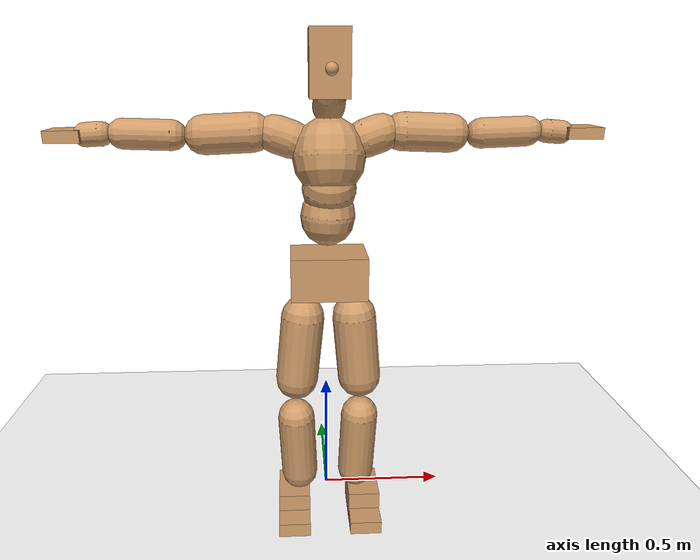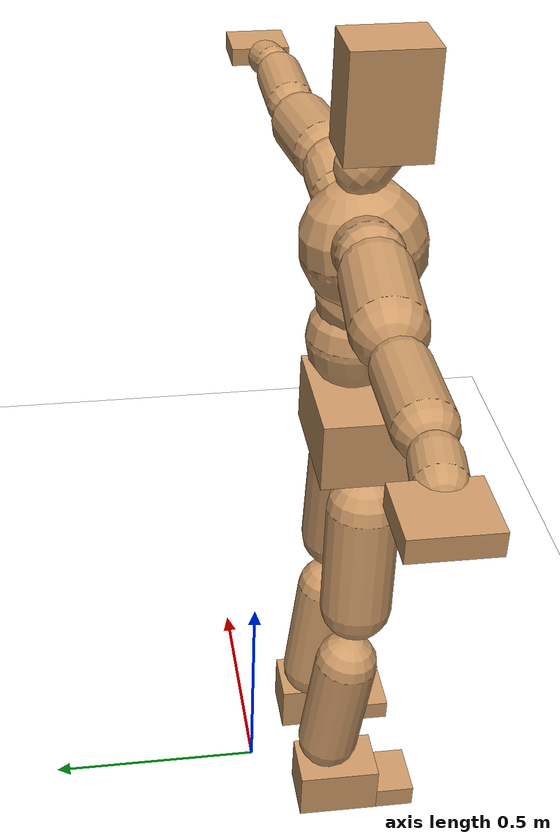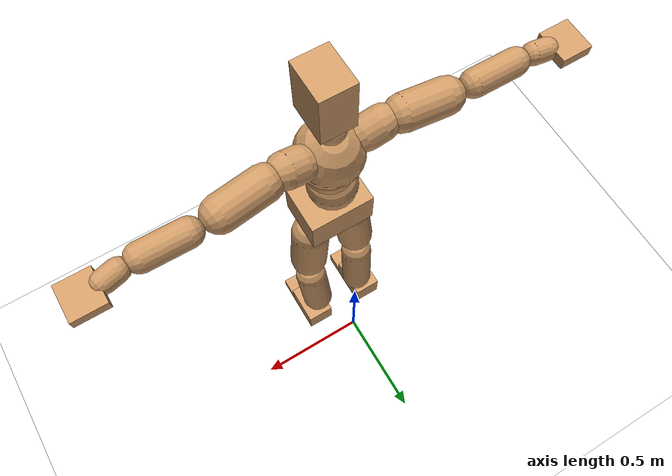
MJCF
<mujoco model="humanoid">
  <option integrator="implicitfast" />

  <visual>
    <global offwidth="1280" offheight="960" />
    <headlight active="1" ambient="0.34 0.34 0.34" diffuse="0.5 0.5 0.5" />
  </visual>

  <default>
    <joint damping="2" stiffness="2" armature="0.01" limited="true" solimplimit="0 .99 .01" />
    <geom condim="1" friction="0.7 0.005 0.0001" solimp=".99 .99 .003" solref="0.015 1" margin="0.001" rgba="0.8 0.6 .4 1" />
    <default class="smplcontact">
      <geom condim="3" friction="1. 0.005 0.0001" solref="0.015 1" solimp="0.98 0.98 0.001" priority="1" />
    </default>
    <default class="stiff_medium">
      <joint stiffness="10" />
    </default>
    <default class="stiff_medium_higher">
      <joint stiffness="50" />
    </default>
    <default class="stiff_high">
      <joint stiffness="100" />
    </default>
  </default>

  <asset>
    <texture type="skybox" builtin="gradient" rgb1="0.99 0.99 0.99" rgb2="0.608 0.828 0.892" width="100" />
    <texture builtin="flat" height="1278" mark="cross" markrgb="1 1 1" name="texgeom" random="0.01" rgb1="0.8 0.6 0.4" rgb2="0.8 0.6 0.4" type="cube" width="127" />
    <texture name="texplane" type="2d" builtin="checker" markrgb="1 1 1" rgb1="0.756 0.772 0.76" rgb2="0.6 0.6 0.6" width="100" height="100" />
    <material name="MatPlane" reflectance="0.5" texture="texplane" texrepeat="1 1" texuniform="true" />
    <material name="geom" texture="texgeom" texuniform="true" />
  </asset>

  <worldbody>
    <light name="tracking_light" pos="0 0 7" dir="0 0 -1" directional="true" cutoff="100" exponent="1" diffuse="1 1 1" specular="0.1 0.1 0.1" mode="trackcom" />
    <camera name="back" pos="0 3 2.4" xyaxes="-1 0 0 0 -1 2" mode="trackcom" />
    <camera name="side" pos="-3 0 2.4" xyaxes="0 -1 0 1 0 2" mode="trackcom" />
    <camera name="front_side" pos="-2.8 -2.8 0.8" xyaxes="0.5 -0.5 0 0.1 0.1 1" mode="trackcom" />
    <geom condim="3" name="floor" pos="0 0 0" rgba="1 1 1 1" size="100 100 .2" type="plane" material="MatPlane" />
    <body name="Pelvis" pos="-0.0018 -0.2233 1.06246" euler="90 0 0">
      <site name="Pelvis" size="0.01" />
      <freejoint name="Pelvis" />
      <geom type="box" pos="0 -0.0131733 -0.00709775" size="0.137954 0.0786043 0.107111" quat="1.0000 0.0000 0.0000 0.0000" density="3165.830099" name="Pelvis" />
      <body name="L_Hip" pos="0.0896898 -0.0995074 -0.0087754">
        <joint name="L_Hip_x" type="hinge" pos="0 0 0" axis="1 0 0" stiffness="10" range="-160.0 22.92" class="stiff_medium" damping="15" />
        <joint name="L_Hip_y" type="hinge" pos="0 0 0" axis="0 1 0" stiffness="10" range="-70.0 70.0" class="stiff_medium" damping="10" />
        <joint name="L_Hip_z" type="hinge" pos="0 0 0" axis="0 0 1" stiffness="10" range="-28.65 90.0" class="stiff_medium" damping="10" />
        <geom type="capsule" density="2040.816327" fromto="0.00778792 -0.0844862 -0.001014 0.0308812 -0.338174 -0.00405555" size="0.0821209" name="L_Hip" />
        <body name="L_Knee" pos="0.0386691 -0.42266 -0.00506956">
          <joint name="L_Knee_x" type="hinge" pos="0 0 0" axis="1 0 0" range="-5.16 171.89" damping="8" />
          <joint name="L_Knee_y" type="hinge" pos="0 0 0" axis="0 1 0" range="-4.58 6.88" damping="8" />
          <joint name="L_Knee_z" type="hinge" pos="0 0 0" axis="0 0 1" range="-6.88 4.58" damping="8" />
          <geom type="capsule" density="1234.567901" fromto="-0.00303465 -0.0896712 -0.00978683 -0.012272 -0.35868 -0.0394138" size="0.0722397" name="L_Knee" />
          <body name="L_Ankle" pos="-0.0153066 -0.448351 -0.0492006">
            <joint name="L_Ankle_x" type="hinge" pos="0 0 0" axis="1 0 0" range="-45.84 45.84" class="stiff_medium" damping="6" />
            <joint name="L_Ankle_y" type="hinge" pos="0 0 0" axis="0 1 0" range="-74.48 22.92" class="stiff_medium" damping="3" />
            <joint name="L_Ankle_z" type="hinge" pos="0 0 0" axis="0 0 1" range="-4.58 4.58" class="stiff_medium" damping="6" />
            <geom type="box" pos="0.0300687 -0.030843 0.0264783" size="0.0623312 0.0598792 0.0930022" quat="1.0000 0.0000 0.0000 0.0000" density="449.071558" name="L_Ankle" class="smplcontact" />
            <body name="L_Toe" pos="0.0340692 -0.0720099 0.130531">
              <joint name="L_Toe_x" type="hinge" pos="0 0 0" axis="1 0 0" range="-91.67 22.92" />
              <joint name="L_Toe_y" type="hinge" pos="0 0 0" axis="0 1 0" range="-4.58 4.58" />
              <joint name="L_Toe_z" type="hinge" pos="0 0 0" axis="0 0 1" range="-4.58 4.58" />
              <geom type="box" pos="-0.0038715 0.00709775 0.0271348" size="0.0616859 0.02581 0.0542695" quat="1.0000 0.0000 0.0000 0.0000" density="423.206892" name="L_Toe" class="smplcontact" />
            </body>
          </body>
        </body>
      </body>
      <body name="R_Hip" pos="-0.0873668 -0.0985276 -0.00554915">
        <joint name="R_Hip_x" type="hinge" pos="0 0 0" axis="1 0 0" stiffness="10" range="-160.0 22.92" class="stiff_medium" damping="15" />
        <joint name="R_Hip_y" type="hinge" pos="0 0 0" axis="0 1 0" stiffness="10" range="-70.0 70.0" class="stiff_medium" damping="10" />
        <joint name="R_Hip_z" type="hinge" pos="0 0 0" axis="0 0 1" stiffness="10" range="-90.0 28.65" class="stiff_medium" damping="10" />
        <geom type="capsule" density="2040.816327" fromto="-0.00868851 -0.0861757 -0.00203479 -0.0344854 -0.34482 -0.00800524" size="0.0809192" name="R_Hip" />
        <body name="R_Knee" pos="-0.0431739 -0.430996 -0.01004">
          <joint name="R_Knee_x" type="hinge" pos="0 0 0" axis="1 0 0" range="-5.16 171.89" damping="8" />
          <joint name="R_Knee_y" type="hinge" pos="0 0 0" axis="0 1 0" range="-6.88 4.58" damping="8" />
          <joint name="R_Knee_z" type="hinge" pos="0 0 0" axis="0 0 1" range="-4.58 6.88" damping="8" />
          <geom type="capsule" density="1234.567901" fromto="0.00361837 -0.0897802 -0.00958824 0.0142075 -0.359014 -0.0380887" size="0.0722397" name="R_Knee" />
          <body name="R_Ankle" pos="0.0178259 -0.448794 -0.047677">
            <joint name="R_Ankle_x" type="hinge" pos="0 0 0" axis="1 0 0" range="-45.84 45.84" class="stiff_medium" damping="6" />
            <joint name="R_Ankle_y" type="hinge" pos="0 0 0" axis="0 1 0" range="-22.92 74.48" class="stiff_medium" damping="3" />
            <joint name="R_Ankle_z" type="hinge" pos="0 0 0" axis="0 0 1" range="-4.58 4.58" class="stiff_medium" damping="6" />
            <geom type="box" pos="-0.0273586 -0.0224547 0.0280101" size="0.0623312 0.0616859 0.0946434" quat="1.0000 0.0000 0.0000 0.0000" density="434.700981" name="R_Ankle" class="smplcontact" />
            <body name="R_Toe" pos="-0.0327787 -0.062073 0.134908">
              <joint name="R_Toe_x" type="hinge" pos="0 0 0" axis="1 0 0" range="-91.67 22.92" />
              <joint name="R_Toe_y" type="hinge" pos="0 0 0" axis="0 1 0" range="-4.58 4.58" />
              <joint name="R_Toe_z" type="hinge" pos="0 0 0" axis="0 0 1" range="-4.58 4.58" />
              <geom type="box" pos="0.0054201 0.00580725 0.0248371" size="0.0618149 0.0278748 0.0539413" quat="1.0000 0.0000 0.0000 0.0000" density="407.384095" name="R_Toe" class="smplcontact" />
            </body>
          </body>
        </body>
      </body>
      <body name="Torso" pos="-0.00322625 0.118669 -0.0344564">
        <joint name="Torso_x" type="hinge" pos="0 0 0" axis="1 0 0" range="-25.78 57.3" class="stiff_medium" damping="15" />
        <joint name="Torso_y" type="hinge" pos="0 0 0" axis="0 1 0" range="-57.3 57.3" class="stiff_high" damping="20" />
        <joint name="Torso_z" type="hinge" pos="0 0 0" axis="0 0 1" range="-34.38 34.38" class="stiff_high" damping="20" />
        <geom type="capsule" density="2040.816327" fromto="0.00276471 0.0660229 0.000552942 0.00330768 0.080683 0.000661535" size="0.0989857" name="Torso" />
        <body name="Spine" pos="0.00607164 0.146815 0.00121433">
          <joint name="Spine_x" type="hinge" pos="0 0 0" axis="1 0 0" stiffness="10" range="-25.78 57.3" class="stiff_medium" damping="15" />
          <joint name="Spine_y" type="hinge" pos="0 0 0" axis="0 1 0" stiffness="10" range="-57.3 57.3" class="stiff_high" damping="8" />
          <joint name="Spine_z" type="hinge" pos="0 0 0" axis="0 0 1" stiffness="20" range="-34.38 34.38" class="stiff_high" damping="12" />
          <geom type="capsule" density="2040.816327" fromto="0.00081106 0.0258664 0.0123346 0.000919653 0.0316219 0.015158" size="0.0971836" name="Spine" />
          <body name="Chest" pos="0.00173071 0.0574882 0.0274926">
            <joint name="Chest_x" type="hinge" pos="0 0 0" axis="1 0 0" stiffness="10" range="-25.78 57.3" class="stiff_medium" damping="15" />
            <joint name="Chest_y" type="hinge" pos="0 0 0" axis="0 1 0" stiffness="10" range="-57.3 57.3" class="stiff_high" damping="8" />
            <joint name="Chest_z" type="hinge" pos="0 0 0" axis="0 0 1" stiffness="20" range="-34.38 34.38" class="stiff_high" damping="12" />
            <geom type="capsule" density="2040.816327" fromto="-0.00106768 0.0740755 -0.0187272 -0.00117627 0.0904731 -0.0229623" size="0.128977" name="Chest" />
            <body name="Neck" pos="-0.00332303 0.232881 -0.0442568">
              <joint name="Neck_x" type="hinge" pos="0 0 0" axis="1 0 0" range="-28.65 57.3" class="stiff_medium_higher" damping="10" />
              <joint name="Neck_y" type="hinge" pos="0 0 0" axis="0 1 0" range="-40.11 40.11" class="stiff_medium_higher" damping="10" />
              <joint name="Neck_z" type="hinge" pos="0 0 0" axis="0 0 1" range="-40.11 40.11" class="stiff_medium_higher" damping="10" />
              <geom type="capsule" density="1000" fromto="0.00108715 0.0142209 0.0112741 0.004479 0.0568925 0.0449737" size="0.0565448" name="Neck" />
              <body name="Head" pos="0.00569654 0.0711223 0.0561251">
                <joint name="Head_x" type="hinge" pos="0 0 0" axis="1 0 0" range="-28.65 57.3" class="stiff_medium_higher" damping="2" />
                <joint name="Head_y" type="hinge" pos="0 0 0" axis="0 1 0" range="-40.11 40.11" class="stiff_medium_higher" damping="2" />
                <joint name="Head_z" type="hinge" pos="0 0 0" axis="0 0 1" range="-40.11 40.11" class="stiff_medium_higher" damping="2" />
                <geom type="box" pos="-0.00473046 0.0832379 -0.0130651" size="0.0682538 0.109654 0.0855988" quat="1.0000 0.0000 0.0000 0.0000" density="1018.069894" name="Head" />
                <geom type="capsule" name="nose" size="0.022526 0.011263" pos="0 0.0665143 0.056315" quat="1 0 0 0" mass="0" contype="0" conaffinity="0" />
              </body>
            </body>
            <body name="L_Thorax" pos="0.101594 0.132128 -0.0375594">
              <joint name="L_Thorax_x" type="hinge" pos="0 0 0" axis="1 0 0" range="-10.89 4.58" class="stiff_medium_higher" damping="20" />
              <joint name="L_Thorax_y" type="hinge" pos="0 0 0" axis="0 1 0" range="-28.65 17.19" class="stiff_medium_higher" damping="20" />
              <joint name="L_Thorax_z" type="hinge" pos="0 0 0" axis="0 0 1" range="-31.51 40.11" class="stiff_medium_higher" damping="20" />
              <geom type="capsule" density="1000" fromto="0.0198642 0.00665778 -0.00197133 0.0794585 0.0266317 -0.00775613" size="0.0674018" name="L_Thorax" />
              <body name="L_Shoulder" pos="0.0993227 0.0332895 -0.00972746">
                <joint name="L_Shoulder_x" type="hinge" pos="0 0 0" axis="1 0 0" range="-97.4 97.4" class="stiff_medium" damping="6" />
                <joint name="L_Shoulder_y" type="hinge" pos="0 0 0" axis="0 1 0" range="-108.86 80.21" class="stiff_medium" damping="6" />
                <joint name="L_Shoulder_z" type="hinge" pos="0 0 0" axis="0 0 1" range="-97.4 85.94" class="stiff_medium" damping="6" />
                <geom type="capsule" density="1000" fromto="0.0575829 -0.00289874 -0.00610296 0.230445 -0.011331 -0.0244099" size="0.0679958" name="L_Shoulder" />
                <body name="L_Elbow" pos="0.288028 -0.0142298 -0.0305128">
                  <joint name="L_Elbow_x" type="hinge" pos="0 0 0" axis="1 0 0" range="-17.19 4.58" damping="5" />
                  <joint name="L_Elbow_y" type="hinge" pos="0 0 0" axis="0 1 0" range="-180.0 17.19" damping="5" />
                  <joint name="L_Elbow_z" type="hinge" pos="0 0 0" axis="0 0 1" range="-100.84 4.58" damping="5" />
                  <geom type="capsule" density="1000" fromto="0.0552537 0.00199762 -0.00021511 0.221237 0.00798897 -0.000991768" size="0.0532656" name="L_Elbow" />
                  <body name="L_Wrist" pos="0.27649 0.00998659 -0.0013384">
                    <joint name="L_Wrist_x" type="hinge" pos="0 0 0" axis="1 0 0" range="-180.0 22.92" />
                    <joint name="L_Wrist_y" type="hinge" pos="0 0 0" axis="0 1 0" range="-17.19 17.19" />
                    <joint name="L_Wrist_z" type="hinge" pos="0 0 0" axis="0 0 1" range="-22.92 22.92" />
                    <geom type="capsule" density="1000" fromto="0.0186404 -0.00176842 -0.00332865 0.0745598 -0.00720503 -0.0133142" size="0.0418234" name="L_Wrist" class="smplcontact" />
                    <body name="L_Hand" pos="0.0932018 -0.00910513 -0.0165117">
                      <joint name="L_Hand_x" type="hinge" pos="0 0 0" axis="1 0 0" range="-17.19 17.19" />
                      <joint name="L_Hand_y" type="hinge" pos="0 0 0" axis="0 1 0" range="-51.57 51.57" />
                      <joint name="L_Hand_z" type="hinge" pos="0 0 0" axis="0 0 1" range="-91.67 91.67" />
                      <geom type="box" pos="0.0536731 0.0012905 -0.0074849" size="0.0636891 0.0203899 0.0694289" quat="1.0000 0.0000 0.0000 0.0000" density="400.552564" name="L_Hand" class="smplcontact" />
                    </body>
                  </body>
                </body>
              </body>
            </body>
            <body name="R_Thorax" pos="-0.105131 0.128522 -0.0433846">
              <joint name="R_Thorax_x" type="hinge" pos="0 0 0" axis="1 0 0" range="-10.89 4.58" class="stiff_medium_higher" damping="20" />
              <joint name="R_Thorax_y" type="hinge" pos="0 0 0" axis="0 1 0" range="-17.19 28.65" class="stiff_medium_higher" damping="20" />
              <joint name="R_Thorax_z" type="hinge" pos="0 0 0" axis="0 0 1" range="-40.11 31.51" class="stiff_medium_higher" damping="20" />
              <geom type="capsule" density="1000" fromto="-0.0209568 0.00709475 -0.00195796 -0.0838255 0.0283784 -0.00796105" size="0.0661081" name="R_Thorax" />
              <body name="R_Shoulder" pos="-0.104776 0.0356005 -0.00991843">
                <joint name="R_Shoulder_x" type="hinge" pos="0 0 0" axis="1 0 0" range="-97.4 97.4" class="stiff_medium" damping="6" />
                <joint name="R_Shoulder_y" type="hinge" pos="0 0 0" axis="0 1 0" range="-80.21 108.86" class="stiff_medium" damping="6" />
                <joint name="R_Shoulder_z" type="hinge" pos="0 0 0" axis="0 0 1" range="-85.94 97.4" class="stiff_medium" damping="6" />
                <geom type="capsule" density="1000" fromto="-0.0562511 -0.0030032 -0.00477882 -0.22523 -0.0118793 -0.0189806" size="0.0698371" name="R_Shoulder" />
                <body name="R_Elbow" pos="-0.281482 -0.014751 -0.0237595">
                  <joint name="R_Elbow_x" type="hinge" pos="0 0 0" axis="1 0 0" range="-17.19 4.58" damping="5" />
                  <joint name="R_Elbow_y" type="hinge" pos="0 0 0" axis="0 1 0" range="-17.19 180.0" damping="5" />
                  <joint name="R_Elbow_z" type="hinge" pos="0 0 0" axis="0 0 1" range="-4.58 100.84" damping="5" />
                  <geom type="capsule" density="1000" fromto="-0.0566956 0.00178851 -0.00122016 -0.226562 0.00689226 -0.00488154" size="0.0536602" name="R_Elbow" />
                  <body name="R_Wrist" pos="-0.283257 0.00868075 -0.00623321">
                    <joint name="R_Wrist_x" type="hinge" pos="0 0 0" axis="1 0 0" range="-180.0 22.92" />
                    <joint name="R_Wrist_y" type="hinge" pos="0 0 0" axis="0 1 0" range="-17.19 17.19" />
                    <joint name="R_Wrist_z" type="hinge" pos="0 0 0" axis="0 0 1" range="-22.92 22.92" />
                    <geom type="capsule" density="1000" fromto="-0.0187503 -0.00132502 -0.00233761 -0.0751134 -0.00543021 -0.00921658" size="0.0428755" name="R_Wrist" class="smplcontact" />
                    <body name="R_Hand" pos="-0.0938662 -0.00675541 -0.011423">
                      <joint name="R_Hand_x" type="hinge" pos="0 0 0" axis="1 0 0" range="-17.19 17.19" />
                      <joint name="R_Hand_y" type="hinge" pos="0 0 0" axis="0 1 0" range="-51.57 51.57" />
                      <joint name="R_Hand_z" type="hinge" pos="0 0 0" axis="0 0 1" range="-91.67 91.67" />
                      <geom type="box" pos="-0.0502981 -0.00116145 -0.010195" size="0.0619472 0.0211642 0.0704613" quat="1.0000 0.0000 0.0000 0.0000" density="403.679611" name="R_Hand" class="smplcontact" />
                    </body>
                  </body>
                </body>
              </body>
            </body>
          </body>
        </body>
      </body>
    </body>
  </worldbody>
  <actuator>
    <general name="L_Hip_x" joint="L_Hip_x" biastype="affine" gainprm="287.33006409732246" biasprm="-215.3247604770444 -180 -2.0" ctrllimited="true" ctrlrange="-1 1" forcerange="-360 360" />
    <general name="L_Hip_y" joint="L_Hip_y" biastype="affine" gainprm="219.9114857512855" biasprm="0.0 -180 -2.0" ctrllimited="true" ctrlrange="-1 1" forcerange="-360 360" />
    <general name="L_Hip_z" joint="L_Hip_z" biastype="affine" gainprm="186.3749841742145" biasprm="96.3683546488669 -180 -2.0" ctrllimited="true" ctrlrange="-1 1" forcerange="-360 360" />
    <general name="L_Knee_x" joint="L_Knee_x" biastype="affine" gainprm="278.10948965903646" biasprm="261.8988715665131 -180 -2.0" ctrllimited="true" ctrlrange="-1 1" forcerange="-360 360" />
    <general name="L_Knee_y" joint="L_Knee_y" biastype="affine" gainprm="18.001325905069514" biasprm="3.612831551628262 -180 -2.0" ctrllimited="true" ctrlrange="-1 1" forcerange="-360 360" />
    <general name="L_Knee_z" joint="L_Knee_z" biastype="affine" gainprm="18.001325905069514" biasprm="-3.612831551628262 -180 -2.0" ctrllimited="true" ctrlrange="-1 1" forcerange="-360 360" />
    <general name="L_Ankle_x" joint="L_Ankle_x" biastype="affine" gainprm="72.00530362027807" biasprm="0.0 -90 -2.0" ctrllimited="true" ctrlrange="-1 1" forcerange="-180 180" />
    <general name="L_Ankle_y" joint="L_Ankle_y" biastype="affine" gainprm="76.49778111491148" biasprm="-40.49512930477244 -90 -2.0" ctrllimited="true" ctrlrange="-1 1" forcerange="-180 180" />
    <general name="L_Ankle_z" joint="L_Ankle_z" biastype="affine" gainprm="7.1942471767206255" biasprm="0.0 -90 -2.0" ctrllimited="true" ctrlrange="-1 1" forcerange="-180 180" />
    <general name="L_Toe_x" joint="L_Toe_x" biastype="affine" gainprm="71.99902043497087" biasprm="-43.19689898685965 -72 -0.8" ctrllimited="true" ctrlrange="-1 1" forcerange="-144 144" />
    <general name="L_Toe_y" joint="L_Toe_y" biastype="affine" gainprm="5.755397741376501" biasprm="0.0 -72 -0.8" ctrllimited="true" ctrlrange="-1 1" forcerange="-144 144" />
    <general name="L_Toe_z" joint="L_Toe_z" biastype="affine" gainprm="5.755397741376501" biasprm="0.0 -72 -0.8" ctrllimited="true" ctrlrange="-1 1" forcerange="-144 144" />
    <general name="R_Hip_x" joint="R_Hip_x" biastype="affine" gainprm="287.33006409732246" biasprm="-215.3247604770444 -180 -2.0" ctrllimited="true" ctrlrange="-1 1" forcerange="-360 360" />
    <general name="R_Hip_y" joint="R_Hip_y" biastype="affine" gainprm="219.9114857512855" biasprm="0.0 -180 -2.0" ctrllimited="true" ctrlrange="-1 1" forcerange="-360 360" />
    <general name="R_Hip_z" joint="R_Hip_z" biastype="affine" gainprm="186.3749841742145" biasprm="-96.3683546488669 -180 -2.0" ctrllimited="true" ctrlrange="-1 1" forcerange="-360 360" />
    <general name="R_Knee_x" joint="R_Knee_x" biastype="affine" gainprm="278.10948965903646" biasprm="261.8988715665131 -180 -2.0" ctrllimited="true" ctrlrange="-1 1" forcerange="-360 360" />
    <general name="R_Knee_y" joint="R_Knee_y" biastype="affine" gainprm="18.001325905069514" biasprm="-3.612831551628262 -180 -2.0" ctrllimited="true" ctrlrange="-1 1" forcerange="-360 360" />
    <general name="R_Knee_z" joint="R_Knee_z" biastype="affine" gainprm="18.001325905069514" biasprm="3.612831551628262 -180 -2.0" ctrllimited="true" ctrlrange="-1 1" forcerange="-360 360" />
    <general name="R_Ankle_x" joint="R_Ankle_x" biastype="affine" gainprm="72.00530362027807" biasprm="0.0 -90 -2.0" ctrllimited="true" ctrlrange="-1 1" forcerange="-180 180" />
    <general name="R_Ankle_y" joint="R_Ankle_y" biastype="affine" gainprm="76.49778111491148" biasprm="40.49512930477244 -90 -2.0" ctrllimited="true" ctrlrange="-1 1" forcerange="-180 180" />
    <general name="R_Ankle_z" joint="R_Ankle_z" biastype="affine" gainprm="7.1942471767206255" biasprm="0.0 -90 -2.0" ctrllimited="true" ctrlrange="-1 1" forcerange="-180 180" />
    <general name="R_Toe_x" joint="R_Toe_x" biastype="affine" gainprm="71.99902043497087" biasprm="-43.19689898685965 -72 -0.8" ctrllimited="true" ctrlrange="-1 1" forcerange="-144 144" />
    <general name="R_Toe_y" joint="R_Toe_y" biastype="affine" gainprm="5.755397741376501" biasprm="0.0 -72 -0.8" ctrllimited="true" ctrlrange="-1 1" forcerange="-144 144" />
    <general name="R_Toe_z" joint="R_Toe_z" biastype="affine" gainprm="5.755397741376501" biasprm="0.0 -72 -0.8" ctrllimited="true" ctrlrange="-1 1" forcerange="-144 144" />
    <general name="Torso_x" joint="Torso_x" biastype="affine" gainprm="174.00234510682668" biasprm="66.0153336274335 -240 -4.0" ctrllimited="true" ctrlrange="-1 1" forcerange="-360 360" />
    <general name="Torso_y" joint="Torso_y" biastype="affine" gainprm="240.0176787342602" biasprm="0.0 -240 -4.0" ctrllimited="true" ctrlrange="-1 1" forcerange="-360 360" />
    <general name="Torso_z" joint="Torso_z" biastype="affine" gainprm="144.01060724055614" biasprm="0.0 -240 -4.0" ctrllimited="true" ctrlrange="-1 1" forcerange="-360 360" />
    <general name="Spine_x" joint="Spine_x" biastype="affine" gainprm="174.00234510682668" biasprm="66.0153336274335 -240 -4.0" ctrllimited="true" ctrlrange="-1 1" forcerange="-360 360" />
    <general name="Spine_y" joint="Spine_y" biastype="affine" gainprm="240.0176787342602" biasprm="0.0 -240 -4.0" ctrllimited="true" ctrlrange="-1 1" forcerange="-360 360" />
    <general name="Spine_z" joint="Spine_z" biastype="affine" gainprm="144.01060724055614" biasprm="0.0 -240 -4.0" ctrllimited="true" ctrlrange="-1 1" forcerange="-360 360" />
    <general name="Chest_x" joint="Chest_x" biastype="affine" gainprm="174.00234510682668" biasprm="66.0153336274335 -240 -4.0" ctrllimited="true" ctrlrange="-1 1" forcerange="-360 360" />
    <general name="Chest_y" joint="Chest_y" biastype="affine" gainprm="240.0176787342602" biasprm="0.0 -240 -4.0" ctrllimited="true" ctrlrange="-1 1" forcerange="-360 360" />
    <general name="Chest_z" joint="Chest_z" biastype="affine" gainprm="144.01060724055614" biasprm="0.0 -240 -4.0" ctrllimited="true" ctrlrange="-1 1" forcerange="-360 360" />
    <general name="Neck_x" joint="Neck_x" biastype="affine" gainprm="27.00198885760427" biasprm="9.000662952534757 -36 -0.8" ctrllimited="true" ctrlrange="-1 1" forcerange="-72 72" />
    <general name="Neck_y" joint="Neck_y" biastype="affine" gainprm="25.20185626709732" biasprm="0.0 -36 -0.8" ctrllimited="true" ctrlrange="-1 1" forcerange="-72 72" />
    <general name="Neck_z" joint="Neck_z" biastype="affine" gainprm="25.20185626709732" biasprm="0.0 -36 -0.8" ctrllimited="true" ctrlrange="-1 1" forcerange="-72 72" />
    <general name="Head_x" joint="Head_x" biastype="affine" gainprm="18.001325905069514" biasprm="6.000441968356505 -24 -0.8" ctrllimited="true" ctrlrange="-1 1" forcerange="-48 48" />
    <general name="Head_y" joint="Head_y" biastype="affine" gainprm="16.801237511398213" biasprm="0.0 -24 -0.8" ctrllimited="true" ctrlrange="-1 1" forcerange="-48 48" />
    <general name="Head_z" joint="Head_z" biastype="affine" gainprm="16.801237511398213" biasprm="0.0 -24 -0.8" ctrllimited="true" ctrlrange="-1 1" forcerange="-48 48" />
    <general name="L_Thorax_x" joint="L_Thorax_x" biastype="affine" gainprm="16.200146117011364" biasprm="-6.6078165480505335 -120 -1.6" ctrllimited="true" ctrlrange="-1 1" forcerange="-240 240" />
    <general name="L_Thorax_y" joint="L_Thorax_y" biastype="affine" gainprm="48.00353574685204" biasprm="-12.00088393671301 -120 -1.6" ctrllimited="true" ctrlrange="-1 1" forcerange="-240 240" />
    <general name="L_Thorax_z" joint="L_Thorax_z" biastype="affine" gainprm="75.00028861670033" biasprm="9.00589894029074 -120 -1.6" ctrllimited="true" ctrlrange="-1 1" forcerange="-240 240" />
    <general name="L_Shoulder_x" joint="L_Shoulder_x" biastype="affine" gainprm="81.5976331892389" biasprm="0.0 -48 -1.6" ctrllimited="true" ctrlrange="-1 1" forcerange="-96 96" />
    <general name="L_Shoulder_y" joint="L_Shoulder_y" biastype="affine" gainprm="79.19745640189629" biasprm="-12.00088393671301 -48 -1.6" ctrllimited="true" ctrlrange="-1 1" forcerange="-96 96" />
    <general name="L_Shoulder_z" joint="L_Shoulder_z" biastype="affine" gainprm="76.79727961455369" biasprm="-4.800353574685214 -48 -1.6" ctrllimited="true" ctrlrange="-1 1" forcerange="-96 96" />
    <general name="L_Elbow_x" joint="L_Elbow_x" biastype="affine" gainprm="13.67849441372996" biasprm="-7.923096672353461 -72 -0.8" ctrllimited="true" ctrlrange="-1 1" forcerange="-144 144" />
    <general name="L_Elbow_y" joint="L_Elbow_y" biastype="affine" gainprm="123.89813107227425" biasprm="-102.29653998619085 -72 -0.8" ctrllimited="true" ctrlrange="-1 1" forcerange="-144 144" />
    <general name="L_Elbow_z" joint="L_Elbow_z" biastype="affine" gainprm="66.23733950828719" biasprm="-60.4819417669107 -72 -0.8" ctrllimited="true" ctrlrange="-1 1" forcerange="-144 144" />
    <general name="L_Wrist_x" joint="L_Wrist_x" biastype="affine" gainprm="21.24973270888136" biasprm="-16.449379134196157 -12 -0.8" ctrllimited="true" ctrlrange="-1 1" forcerange="-24 24" />
    <general name="L_Wrist_y" joint="L_Wrist_y" biastype="affine" gainprm="3.6002651810139037" biasprm="0.0 -12 -0.8" ctrllimited="true" ctrlrange="-1 1" forcerange="-24 24" />
    <general name="L_Wrist_z" joint="L_Wrist_z" biastype="affine" gainprm="4.800353574685205" biasprm="0.0 -12 -0.8" ctrllimited="true" ctrlrange="-1 1" forcerange="-24 24" />
    <general name="L_Hand_x" joint="L_Hand_x" biastype="affine" gainprm="3.6002651810139037" biasprm="0.0 -12 -0.8" ctrllimited="true" ctrlrange="-1 1" forcerange="-24 24" />
    <general name="L_Hand_y" joint="L_Hand_y" biastype="affine" gainprm="10.800795543041708" biasprm="0.0 -12 -0.8" ctrllimited="true" ctrlrange="-1 1" forcerange="-24 24" />
    <general name="L_Hand_z" joint="L_Hand_z" biastype="affine" gainprm="19.199319903638422" biasprm="0.0 -12 -0.8" ctrllimited="true" ctrlrange="-1 1" forcerange="-24 24" />
    <general name="R_Thorax_x" joint="R_Thorax_x" biastype="affine" gainprm="16.200146117011364" biasprm="-6.6078165480505335 -120 -1.6" ctrllimited="true" ctrlrange="-1 1" forcerange="-240 240" />
    <general name="R_Thorax_y" joint="R_Thorax_y" biastype="affine" gainprm="48.00353574685204" biasprm="12.000883936713002 -120 -1.6" ctrllimited="true" ctrlrange="-1 1" forcerange="-240 240" />
    <general name="R_Thorax_z" joint="R_Thorax_z" biastype="affine" gainprm="75.00028861670033" biasprm="-9.00589894029074 -120 -1.6" ctrllimited="true" ctrlrange="-1 1" forcerange="-240 240" />
    <general name="R_Shoulder_x" joint="R_Shoulder_x" biastype="affine" gainprm="81.5976331892389" biasprm="0.0 -48 -1.6" ctrllimited="true" ctrlrange="-1 1" forcerange="-96 96" />
    <general name="R_Shoulder_y" joint="R_Shoulder_y" biastype="affine" gainprm="79.19745640189629" biasprm="12.00088393671301 -48 -1.6" ctrllimited="true" ctrlrange="-1 1" forcerange="-96 96" />
    <general name="R_Shoulder_z" joint="R_Shoulder_z" biastype="affine" gainprm="76.79727961455369" biasprm="4.800353574685204 -48 -1.6" ctrllimited="true" ctrlrange="-1 1" forcerange="-96 96" />
    <general name="R_Elbow_x" joint="R_Elbow_x" biastype="affine" gainprm="13.67849441372996" biasprm="-7.923096672353461 -72 -0.8" ctrllimited="true" ctrlrange="-1 1" forcerange="-144 144" />
    <general name="R_Elbow_y" joint="R_Elbow_y" biastype="affine" gainprm="123.89813107227425" biasprm="102.29653998619085 -72 -0.8" ctrllimited="true" ctrlrange="-1 1" forcerange="-144 144" />
    <general name="R_Elbow_z" joint="R_Elbow_z" biastype="affine" gainprm="66.23733950828719" biasprm="60.481941766910694 -72 -0.8" ctrllimited="true" ctrlrange="-1 1" forcerange="-144 144" />
    <general name="R_Wrist_x" joint="R_Wrist_x" biastype="affine" gainprm="21.24973270888136" biasprm="-16.449379134196157 -12 -0.8" ctrllimited="true" ctrlrange="-1 1" forcerange="-24 24" />
    <general name="R_Wrist_y" joint="R_Wrist_y" biastype="affine" gainprm="3.6002651810139037" biasprm="0.0 -12 -0.8" ctrllimited="true" ctrlrange="-1 1" forcerange="-24 24" />
    <general name="R_Wrist_z" joint="R_Wrist_z" biastype="affine" gainprm="4.800353574685205" biasprm="0.0 -12 -0.8" ctrllimited="true" ctrlrange="-1 1" forcerange="-24 24" />
    <general name="R_Hand_x" joint="R_Hand_x" biastype="affine" gainprm="3.6002651810139037" biasprm="0.0 -12 -0.8" ctrllimited="true" ctrlrange="-1 1" forcerange="-24 24" />
    <general name="R_Hand_y" joint="R_Hand_y" biastype="affine" gainprm="10.800795543041708" biasprm="0.0 -12 -0.8" ctrllimited="true" ctrlrange="-1 1" forcerange="-24 24" />
    <general name="R_Hand_z" joint="R_Hand_z" biastype="affine" gainprm="19.199319903638422" biasprm="0.0 -12 -0.8" ctrllimited="true" ctrlrange="-1 1" forcerange="-24 24" />
  </actuator>
  <contact>
    <exclude body1="Torso" body2="Chest" />
    <exclude body1="Head" body2="Chest" />
    <exclude body1="R_Knee" body2="R_Toe" />
    <exclude body1="R_Knee" body2="L_Ankle" />
    <exclude body1="R_Knee" body2="L_Toe" />
    <exclude body1="L_Knee" body2="L_Toe" />
    <exclude body1="L_Knee" body2="R_Ankle" />
    <exclude body1="L_Knee" body2="R_Toe" />
    <exclude body1="L_Shoulder" body2="Chest" />
    <exclude body1="R_Shoulder" body2="Chest" />
  </contact>
  <sensor>
    <framelinvel name="sensor_Pelvis_framelinvel" objtype="xbody" objname="Pelvis" />
    <framelinvel name="sensor_L_Hip_framelinvel" objtype="xbody" objname="L_Hip" />
    <framelinvel name="sensor_L_Knee_framelinvel" objtype="xbody" objname="L_Knee" />
    <framelinvel name="sensor_L_Ankle_framelinvel" objtype="xbody" objname="L_Ankle" />
    <framelinvel name="sensor_L_Toe_framelinvel" objtype="xbody" objname="L_Toe" />
    <framelinvel name="sensor_R_Hip_framelinvel" objtype="xbody" objname="R_Hip" />
    <framelinvel name="sensor_R_Knee_framelinvel" objtype="xbody" objname="R_Knee" />
    <framelinvel name="sensor_R_Ankle_framelinvel" objtype="xbody" objname="R_Ankle" />
    <framelinvel name="sensor_R_Toe_framelinvel" objtype="xbody" objname="R_Toe" />
    <framelinvel name="sensor_Torso_framelinvel" objtype="xbody" objname="Torso" />
    <framelinvel name="sensor_Spine_framelinvel" objtype="xbody" objname="Spine" />
    <framelinvel name="sensor_Chest_framelinvel" objtype="xbody" objname="Chest" />
    <framelinvel name="sensor_Neck_framelinvel" objtype="xbody" objname="Neck" />
    <framelinvel name="sensor_Head_framelinvel" objtype="xbody" objname="Head" />
    <framelinvel name="sensor_L_Thorax_framelinvel" objtype="xbody" objname="L_Thorax" />
    <framelinvel name="sensor_L_Shoulder_framelinvel" objtype="xbody" objname="L_Shoulder" />
    <framelinvel name="sensor_L_Elbow_framelinvel" objtype="xbody" objname="L_Elbow" />
    <framelinvel name="sensor_L_Wrist_framelinvel" objtype="xbody" objname="L_Wrist" />
    <framelinvel name="sensor_L_Hand_framelinvel" objtype="xbody" objname="L_Hand" />
    <framelinvel name="sensor_R_Thorax_framelinvel" objtype="xbody" objname="R_Thorax" />
    <framelinvel name="sensor_R_Shoulder_framelinvel" objtype="xbody" objname="R_Shoulder" />
    <framelinvel name="sensor_R_Elbow_framelinvel" objtype="xbody" objname="R_Elbow" />
    <framelinvel name="sensor_R_Wrist_framelinvel" objtype="xbody" objname="R_Wrist" />
    <framelinvel name="sensor_R_Hand_framelinvel" objtype="xbody" objname="R_Hand" />
    <frameangvel name="sensor_Pelvis_frameangvel" objtype="xbody" objname="Pelvis" />
    <frameangvel name="sensor_L_Hip_frameangvel" objtype="xbody" objname="L_Hip" />
    <frameangvel name="sensor_L_Knee_frameangvel" objtype="xbody" objname="L_Knee" />
    <frameangvel name="sensor_L_Ankle_frameangvel" objtype="xbody" objname="L_Ankle" />
    <frameangvel name="sensor_L_Toe_frameangvel" objtype="xbody" objname="L_Toe" />
    <frameangvel name="sensor_R_Hip_frameangvel" objtype="xbody" objname="R_Hip" />
    <frameangvel name="sensor_R_Knee_frameangvel" objtype="xbody" objname="R_Knee" />
    <frameangvel name="sensor_R_Ankle_frameangvel" objtype="xbody" objname="R_Ankle" />
    <frameangvel name="sensor_R_Toe_frameangvel" objtype="xbody" objname="R_Toe" />
    <frameangvel name="sensor_Torso_frameangvel" objtype="xbody" objname="Torso" />
    <frameangvel name="sensor_Spine_frameangvel" objtype="xbody" objname="Spine" />
    <frameangvel name="sensor_Chest_frameangvel" objtype="xbody" objname="Chest" />
    <frameangvel name="sensor_Neck_frameangvel" objtype="xbody" objname="Neck" />
    <frameangvel name="sensor_Head_frameangvel" objtype="xbody" objname="Head" />
    <frameangvel name="sensor_L_Thorax_frameangvel" objtype="xbody" objname="L_Thorax" />
    <frameangvel name="sensor_L_Shoulder_frameangvel" objtype="xbody" objname="L_Shoulder" />
    <frameangvel name="sensor_L_Elbow_frameangvel" objtype="xbody" objname="L_Elbow" />
    <frameangvel name="sensor_L_Wrist_frameangvel" objtype="xbody" objname="L_Wrist" />
    <frameangvel name="sensor_L_Hand_frameangvel" objtype="xbody" objname="L_Hand" />
    <frameangvel name="sensor_R_Thorax_frameangvel" objtype="xbody" objname="R_Thorax" />
    <frameangvel name="sensor_R_Shoulder_frameangvel" objtype="xbody" objname="R_Shoulder" />
    <frameangvel name="sensor_R_Elbow_frameangvel" objtype="xbody" objname="R_Elbow" />
    <frameangvel name="sensor_R_Wrist_frameangvel" objtype="xbody" objname="R_Wrist" />
    <frameangvel name="sensor_R_Hand_frameangvel" objtype="xbody" objname="R_Hand" />
    <subtreelinvel name="Chest_subtreelinvel" body="Chest" />
    <gyro name="Pelvis_gyro" site="Pelvis" />
  </sensor>
</mujoco>
